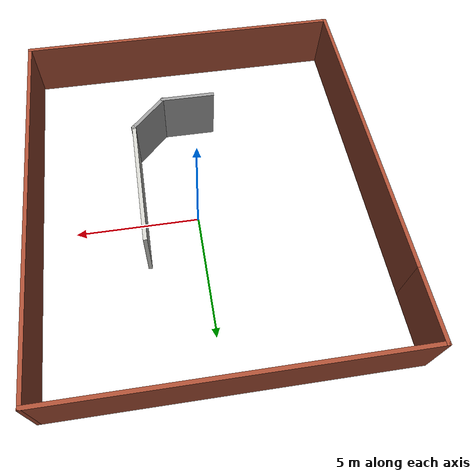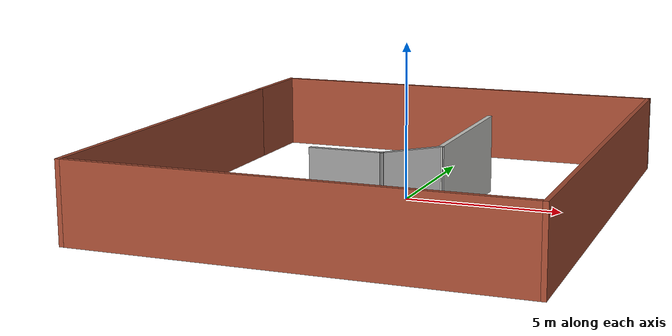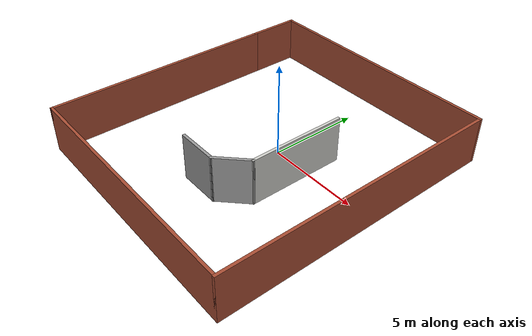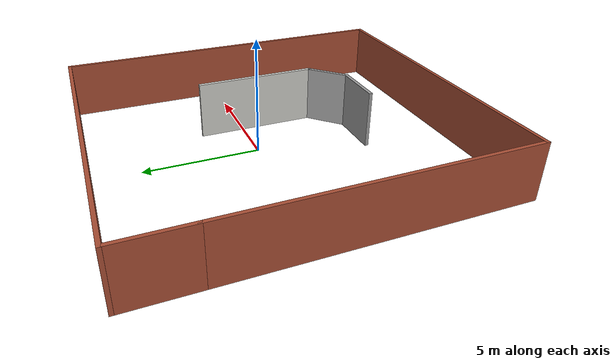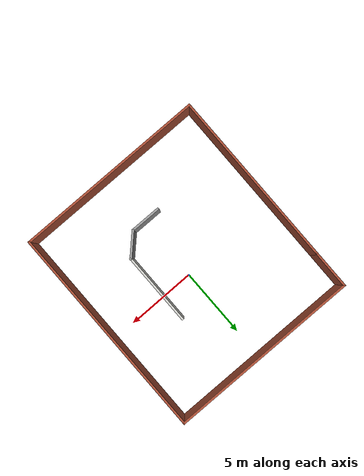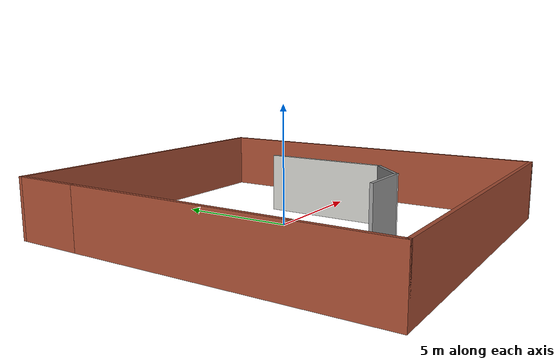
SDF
<?xml version='1.0'?>
<sdf version='1.6'>
  <model name='world_hmp'>
    <pose frame=''>-0.362746 -0.662938 0 0 -0 0</pose>
    <link name='Wall_11'>
      <collision name='Wall_11_Collision'>
        <geometry>
          <box>
            <size>5.25 0.15 2.5</size>
          </box>
        </geometry>
        <pose frame=''>0 0 1.25 0 -0 0</pose>
      </collision>
      <visual name='Wall_11_Visual'>
        <pose frame=''>0 0 1.25 0 -0 0</pose>
        <geometry>
          <box>
            <size>5.25 0.15 2.5</size>
          </box>
        </geometry>
        <material>
          <script>
            <uri>file://media/materials/scripts/gazebo.material</uri>
            <name>Gazebo/CeilingTiled</name>
          </script>
          <ambient>1 1 1 1</ambient>
        </material>
        <meta>
          <layer>0</layer>
        </meta>
      </visual>
      <pose frame=''>2.52237 -0.052335 0 0 -0 -1.5708</pose>
    </link>
    <link name='Wall_12'>
      <collision name='Wall_12_Collision'>
        <geometry>
          <box>
            <size>2 0.15 2.5</size>
          </box>
        </geometry>
        <pose frame=''>0 0 1.25 0 -0 0</pose>
      </collision>
      <visual name='Wall_12_Visual'>
        <pose frame=''>0 0 1.25 0 -0 0</pose>
        <geometry>
          <box>
            <size>2 0.15 2.5</size>
          </box>
        </geometry>
        <material>
          <script>
            <uri>file://media/materials/scripts/gazebo.material</uri>
            <name>Gazebo/Grey</name>
          </script>
          <ambient>1 1 1 1</ambient>
        </material>
        <meta>
          <layer>0</layer>
        </meta>
      </visual>
      <pose frame=''>1.8683 -3.25641 0 0 -0 -2.35619</pose>
    </link>
    <link name='Wall_13'>
      <collision name='Wall_13_Collision'>
        <geometry>
          <box>
            <size>2.25 0.15 2.5</size>
          </box>
        </geometry>
        <pose frame=''>0 0 1.25 0 -0 0</pose>
      </collision>
      <visual name='Wall_13_Visual'>
        <pose frame=''>0 0 1.25 0 -0 0</pose>
        <geometry>
          <box>
            <size>2.25 0.15 2.5</size>
          </box>
        </geometry>
        <material>
          <script>
            <uri>file://media/materials/scripts/gazebo.material</uri>
            <name>Gazebo/Grey</name>
          </script>
          <ambient>1 1 1 1</ambient>
        </material>
        <meta>
          <layer>0</layer>
        </meta>
      </visual>
      <pose frame=''>0.164225 -3.91048 0 0 -0 3.14159</pose>
    </link>
    <link name='Wall_5'>
      <collision name='Wall_5_Collision'>
        <geometry>
          <box>
            <size>12.75 0.15 2.5</size>
          </box>
        </geometry>
        <pose frame=''>0 0 1.25 0 -0 0</pose>
      </collision>
      <visual name='Wall_5_Visual'>
        <pose frame=''>0 0 1.25 0 -0 0</pose>
        <geometry>
          <box>
            <size>12.75 0.15 2.5</size>
          </box>
        </geometry>
        <material>
          <script>
            <uri>file://media/materials/scripts/gazebo.material</uri>
            <name>Gazebo/Bricks</name>
          </script>
          <ambient>1 1 1 1</ambient>
        </material>
        <meta>
          <layer>0</layer>
        </meta>
      </visual>
      <pose frame=''>-6.8 -1.375 0 0 -0 -1.5708</pose>
    </link>
    <link name='Wall_6'>
      <collision name='Wall_6_Collision'>
        <geometry>
          <box>
            <size>13.75 0.15 2.5</size>
          </box>
        </geometry>
        <pose frame=''>0 0 1.25 0 -0 0</pose>
      </collision>
      <visual name='Wall_6_Visual'>
        <pose frame=''>0 0 1.25 0 -0 0</pose>
        <geometry>
          <box>
            <size>13.75 0.15 2.5</size>
          </box>
        </geometry>
        <material>
          <script>
            <uri>file://media/materials/scripts/gazebo.material</uri>
            <name>Gazebo/Bricks</name>
          </script>
          <ambient>1 1 1 1</ambient>
        </material>
        <meta>
          <layer>0</layer>
        </meta>
      </visual>
      <pose frame=''>-0 -7.675 0 0 -0 0</pose>
    </link>
    <link name='Wall_7'>
      <collision name='Wall_7_Collision'>
        <geometry>
          <box>
            <size>15.5 0.15 2.5</size>
          </box>
        </geometry>
        <pose frame=''>0 0 1.25 0 -0 0</pose>
      </collision>
      <visual name='Wall_7_Visual'>
        <pose frame=''>0 0 1.25 0 -0 0</pose>
        <geometry>
          <box>
            <size>15.5 0.15 2.5</size>
          </box>
        </geometry>
        <material>
          <script>
            <uri>file://media/materials/scripts/gazebo.material</uri>
            <name>Gazebo/Bricks</name>
          </script>
          <ambient>1 1 1 1</ambient>
        </material>
        <meta>
          <layer>0</layer>
        </meta>
      </visual>
      <pose frame=''>6.8 -0 0 0 -0 1.5708</pose>
    </link>
    <link name='Wall_8'>
      <collision name='Wall_8_Collision'>
        <geometry>
          <box>
            <size>13.75 0.15 2.5</size>
          </box>
        </geometry>
        <pose frame=''>0 0 1.25 0 -0 0</pose>
      </collision>
      <visual name='Wall_8_Visual'>
        <pose frame=''>0 0 1.25 0 -0 0</pose>
        <geometry>
          <box>
            <size>13.75 0.15 2.5</size>
          </box>
        </geometry>
        <material>
          <script>
            <uri>file://media/materials/scripts/gazebo.material</uri>
            <name>Gazebo/Bricks</name>
          </script>
          <ambient>1 1 1 1</ambient>
        </material>
        <meta>
          <layer>0</layer>
        </meta>
      </visual>
      <pose frame=''>-0 7.675 0 0 -0 3.14159</pose>
    </link>
    <link name='Wall_9'>
      <collision name='Wall_9_Collision'>
        <geometry>
          <box>
            <size>2.9 0.15 2.5</size>
          </box>
        </geometry>
        <pose frame=''>0 0 1.25 0 -0 0</pose>
      </collision>
      <visual name='Wall_9_Visual'>
        <pose frame=''>0 0 1.25 0 -0 0</pose>
        <geometry>
          <box>
            <size>2.9 0.15 2.5</size>
          </box>
        </geometry>
        <material>
          <script>
            <uri>file://media/materials/scripts/gazebo.material</uri>
            <name>Gazebo/Bricks</name>
          </script>
          <ambient>1 1 1 1</ambient>
        </material>
        <meta>
          <layer>0</layer>
        </meta>
      </visual>
      <pose frame=''>-6.8 6.3 0 0 -0 -1.5708</pose>
    </link>
    <static>1</static>
  </model>
</sdf>
